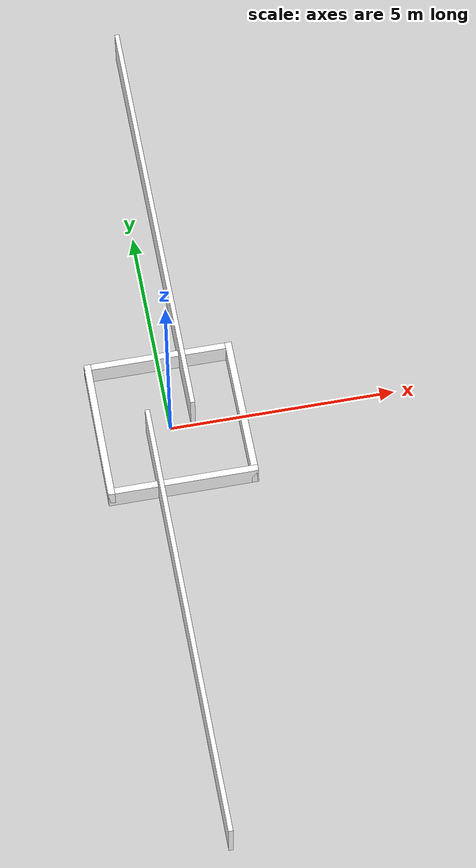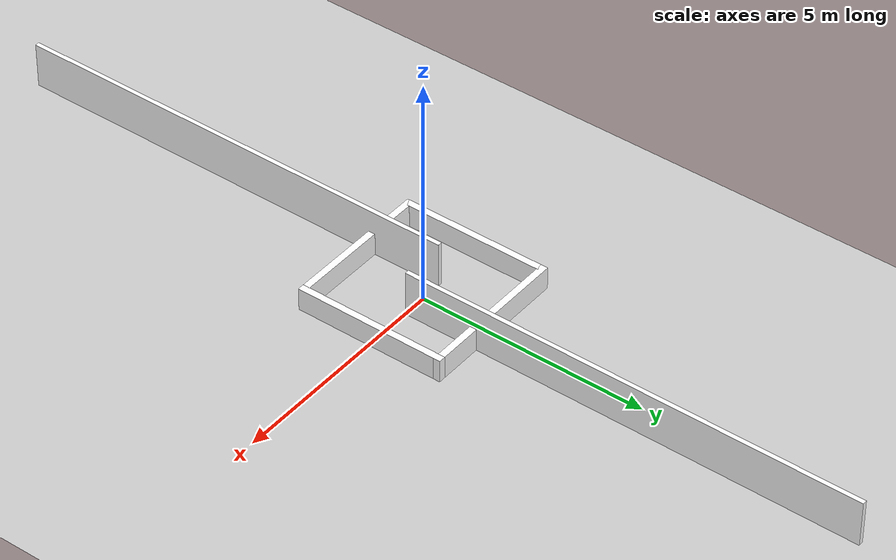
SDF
<sdf version='1.6'>
  <world name='default'>
    <!-- A global light source -->
    <include>
      <uri>model://sun</uri>
    </include>

    <!-- A ground plane -->
    <include>
      <uri>model://ground_plane</uri>
    </include>

    <physics type="ode">
      <real_time_update_rate>100.0</real_time_update_rate>
      <max_step_size>0.01</max_step_size>
      <real_time_factor>0.5</real_time_factor>
      <ode>
        <solver>
          <type>quick</type>
          <iters>150</iters>
          <precon_iters>0</precon_iters>
          <sor>1.400000</sor>
          <use_dynamic_moi_rescaling>1</use_dynamic_moi_rescaling>
        </solver>
        <constraints>
          <cfm>0.00001</cfm>
          <erp>0.2</erp>
          <contact_max_correcting_vel>2000.000000</contact_max_correcting_vel>
          <contact_surface_layer>0.01000</contact_surface_layer>
        </constraints>
      </ode>
    </physics>

    <model name="obs1">
      <link name="link">
        <collision name="collision">
          <pose frame=''>0 0 0.5 0 -0 0</pose>
          <geometry>
            <box>
              <size>0.1 10 1</size>
            </box>
          </geometry>
        </collision>
        <visual name="visual">
          <pose frame=''>0 0 0.5 0 -0 0</pose>
          <geometry>
            <box>
              <size>0.1 10 1</size>
            </box>
          </geometry>
          <material>
            <ambient>1 1 1 1</ambient>
          </material>
        </visual>
      </link>
      <pose frame=''>0.5 5 0 0 0 0</pose>
      <static>true</static>
    </model>

    <model name="obs2">
      <link name="link">
        <collision name="collision">
          <pose frame=''>0 0 0.5 0 -0 0</pose>
          <geometry>
            <box>
              <size>0.1 10 1</size>
            </box>
          </geometry>
        </collision>
        <visual name="visual">
          <pose frame=''>0 0 0.5 0 -0 0</pose>
          <geometry>
            <box>
              <size>0.1 10 1</size>
            </box>
          </geometry>
          <material>
            <ambient>1 1 1 1</ambient>
          </material>
        </visual>
      </link>
      <pose frame=''>-0.5 -5 0 0 0 0</pose>
      <static>true</static>
    </model>

    <model name='box_walls'>
      <link name='fixed'></link>
      <pose frame=''>0 0 0 0 -0 0</pose>
      <link name='Wall_0'>
        <collision name='Wall_0_Collision'>
          <geometry>
            <box>
              <size>3.3 0.15 0.5</size>
            </box>
          </geometry>
          <pose frame=''>0 0 0.25 0 -0 0</pose>
        </collision>
        <visual name='Wall_0_Visual'>
          <pose frame=''>0 0 0.25 0 -0 0</pose>
          <geometry>
            <box>
              <size>3.3 0.15 0.5</size>
            </box>
          </geometry>
          <material>
            <ambient>1 1 1 1</ambient>
          </material>
        </visual>
        <pose frame=''>0 1.575 0 0 -0 0</pose>
      </link>
      <link name='Wall_2'>
        <collision name='Wall_2_Collision'>
          <geometry>
            <box>
              <size>3.3 0.15 0.5</size>
            </box>
          </geometry>
          <pose frame=''>0 0 0.25 0 -0 0</pose>
        </collision>
        <visual name='Wall_2_Visual'>
          <pose frame=''>0 0 0.25 0 -0 0</pose>
          <geometry>
            <box>
              <size>3.3 0.15 0.5</size>
            </box>
          </geometry>
          <material>
            <ambient>1 1 1 1</ambient>
          </material>
        </visual>
        <pose frame=''>-1.575 0 0 0 0 -1.5708</pose>
      </link>
      <link name='Wall_3'>
        <collision name='Wall_3_Collision'>
          <geometry>
            <box>
              <size>3.3 0.15 0.5</size>
            </box>
          </geometry>
          <pose frame=''>0 0 0.25 0 -0 0</pose>
        </collision>
        <visual name='Wall_3_Visual'>
          <pose frame=''>0 0 0.25 0 -0 0</pose>
          <geometry>
            <box>
              <size>3.3 0.15 0.5</size>
            </box>
          </geometry>
          <material>
            <ambient>1 1 1 1</ambient>
          </material>
        </visual>
        <pose frame=''>0 -1.575 0 0 -0 0</pose>
      </link>
      <link name='Wall_4'>
        <collision name='Wall_4_Collision'>
          <geometry>
            <box>
              <size>3.3 0.15 0.5</size>
            </box>
          </geometry>
          <pose frame=''>0 0 0.25 0 -0 0</pose>
        </collision>
        <visual name='Wall_4_Visual'>
          <pose frame=''>0 0 0.25 0 -0 0</pose>
          <geometry>
            <box>
              <size>3.3 0.15 0.5</size>
            </box>
          </geometry>
          <material>
            <ambient>1 1 1 1</ambient>
          </material>
        </visual>
        <pose frame=''>1.575 0 0 0 -0 1.5708</pose>
      </link>
      <static>1</static>
    </model>

    <scene>
      <ambient>0.4 0.4 0.4 1</ambient>
      <background>0.7 0.7 0.7 1</background>
      <shadows>false</shadows>
    </scene>

    <gui fullscreen='0'>
      <camera name='user_camera'>
        <pose>0.8 0.0 12.0 0 1.5708 0</pose>
        <view_controller>orbit</view_controller>
      </camera>
    </gui>
  </world>
</sdf>
